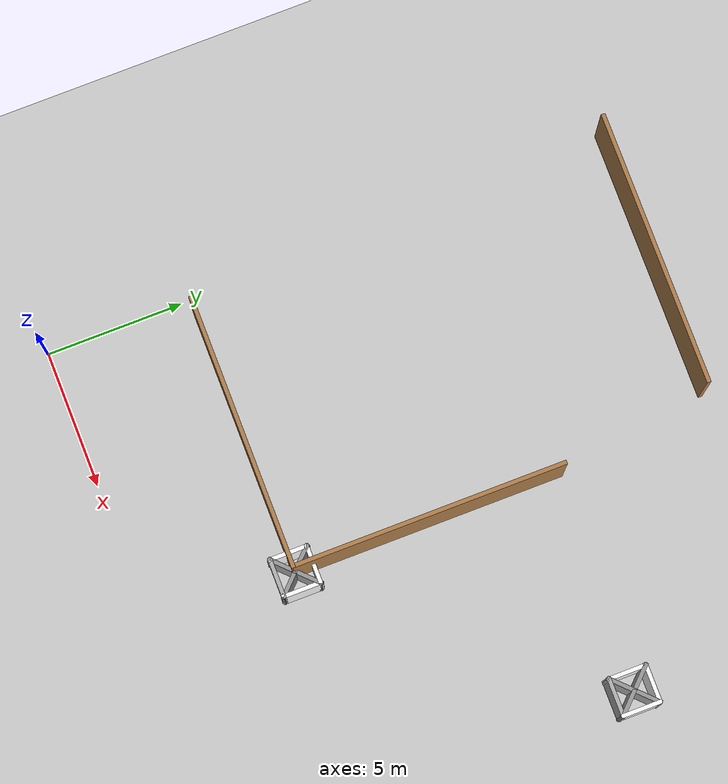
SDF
<sdf version="1.7">
 <world name="default">
  <model name="ground_plane">
   <static>1</static>
   <link name="link">
    <collision name="collision">
     <geometry><plane><normal>0 0 1</normal><size>100 100</size></plane></geometry>
     <surface>
      <contact><collide_bitmask>65535</collide_bitmask></contact>
      <friction><ode><mu>100</mu><mu2>50</mu2></ode></friction>
     </surface>
    </collision>
    <visual name="visual">
     <cast_shadows>0</cast_shadows>
     <geometry><plane><normal>0 0 1</normal><size>100 100</size></plane></geometry>
     <material>
      <script><uri>file://media/materials/scripts/gazebo.material</uri><name>Gazebo/Grey</name></script>
     </material>
    </visual>
   </link>
  </model>
  <model name="Untitled_clone_clone_0_clone_clone_1_clone">
   <link name="Wall_0">
    <pose>-0.8775 -4.2975 0 0 -0 0</pose>
    <inertial>
     <mass>1</mass>
     <inertia><ixx>1</ixx><ixy>0</ixy><ixz>0</ixz><iyy>1</iyy><iyz>0</iyz><izz>1</izz></inertia>
    </inertial>
    <visual name="Wall_0_Visual">
     <pose>0 0 1.9 0 -0 0</pose>
     <geometry><box><size>10 0.15 3.8</size></box></geometry>
     <material>
      <script><uri>file://media/materials/scripts/gazebo.material</uri><name>Gazebo/Wood</name></script>
      <ambient>1 1 1 1</ambient>
      <shader type="pixel"><normal_map>__default__</normal_map></shader>
      <diffuse>1 1 1 1</diffuse>
      <specular>0.2 0.2 0.2 1</specular>
      <emissive>0 0 0 1</emissive>
     </material>
     <meta><layer>0</layer></meta>
    </visual>
    <collision name="Wall_0_Collision">
     <pose>0 0 1.9 0 -0 0</pose>
     <geometry><box><size>10 0.15 3.8</size></box></geometry>
     <surface>
      <friction>
       <ode><mu>1</mu><mu2>1</mu2><fdir1>0 0 0</fdir1><slip1>0</slip1><slip2>0</slip2></ode>
       <torsional>
        <coefficient>1</coefficient>
        <patch_radius>0</patch_radius>
        <surface_radius>0</surface_radius>
        <use_patch_radius>1</use_patch_radius>
        <ode><slip>0</slip></ode>
       </torsional>
      </friction>
      <bounce><restitution_coefficient>0</restitution_coefficient><threshold>1e+06</threshold></bounce>
      <contact>
       <collide_without_contact>0</collide_without_contact>
       <collide_without_contact_bitmask>1</collide_without_contact_bitmask>
       <collide_bitmask>1</collide_bitmask>
       <ode>
        <soft_cfm>0</soft_cfm>
        <soft_erp>0.2</soft_erp>
        <kp>1e+13</kp>
        <kd>1</kd>
        <max_vel>0.01</max_vel>
        <min_depth>0</min_depth>
       </ode>
       <bullet>
        <split_impulse>1</split_impulse>
        <split_impulse_penetration_threshold>-0.01</split_impulse_penetration_threshold>
        <soft_cfm>0</soft_cfm>
        <soft_erp>0.2</soft_erp>
        <kp>1e+13</kp>
        <kd>1</kd>
       </bullet>
      </contact>
     </surface>
    </collision>
   </link>
   <static>1</static>
   <pose>6.34801 9.65586 0 0 -0 0</pose>
  </model>
  <model name="Untitled_clone_clone_0_clone_2_clone">
   <link name="Wall_0">
    <pose>-0.8775 -4.2975 0 0 -0 0</pose>
    <inertial>
     <mass>1</mass>
     <inertia><ixx>1</ixx><ixy>0</ixy><ixz>0</ixz><iyy>1</iyy><iyz>0</iyz><izz>1</izz></inertia>
    </inertial>
    <visual name="Wall_0_Visual">
     <pose>0 0 1.9 0 -0 0</pose>
     <geometry><box><size>10 0.15 3.8</size></box></geometry>
     <material>
      <script><uri>file://media/materials/scripts/gazebo.material</uri><name>Gazebo/Wood</name></script>
      <ambient>1 1 1 1</ambient>
      <shader type="pixel"><normal_map>__default__</normal_map></shader>
      <diffuse>1 1 1 1</diffuse>
      <specular>0.2 0.2 0.2 1</specular>
      <emissive>0 0 0 1</emissive>
     </material>
     <meta><layer>0</layer></meta>
    </visual>
    <collision name="Wall_0_Collision">
     <pose>0 0 1.9 0 -0 0</pose>
     <geometry><box><size>10 0.15 3.8</size></box></geometry>
     <surface>
      <friction>
       <ode><mu>1</mu><mu2>1</mu2><fdir1>0 0 0</fdir1><slip1>0</slip1><slip2>0</slip2></ode>
       <torsional>
        <coefficient>1</coefficient>
        <patch_radius>0</patch_radius>
        <surface_radius>0</surface_radius>
        <use_patch_radius>1</use_patch_radius>
        <ode><slip>0</slip></ode>
       </torsional>
      </friction>
      <bounce><restitution_coefficient>0</restitution_coefficient><threshold>1e+06</threshold></bounce>
      <contact>
       <collide_without_contact>0</collide_without_contact>
       <collide_without_contact_bitmask>1</collide_without_contact_bitmask>
       <collide_bitmask>1</collide_bitmask>
       <ode>
        <soft_cfm>0</soft_cfm>
        <soft_erp>0.2</soft_erp>
        <kp>1e+13</kp>
        <kd>1</kd>
        <max_vel>0.01</max_vel>
        <min_depth>0</min_depth>
       </ode>
       <bullet>
        <split_impulse>1</split_impulse>
        <split_impulse_penetration_threshold>-0.01</split_impulse_penetration_threshold>
        <soft_cfm>0</soft_cfm>
        <soft_erp>0.2</soft_erp>
        <kp>1e+13</kp>
        <kd>1</kd>
       </bullet>
      </contact>
     </surface>
    </collision>
   </link>
   <static>1</static>
   <pose>6.1062 11.213 0 0 -0 1.5708</pose>
  </model>
  <model name="Untitled_clone_clone_2">
   <link name="Wall_0">
    <pose>-0.8775 -4.2975 0 0 -0 0</pose>
    <inertial>
     <mass>1</mass>
     <inertia><ixx>1</ixx><ixy>0</ixy><ixz>0</ixz><iyy>1</iyy><iyz>0</iyz><izz>1</izz></inertia>
    </inertial>
    <visual name="Wall_0_Visual">
     <pose>0 0 1.9 0 -0 0</pose>
     <geometry><box><size>10 0.15 3.8</size></box></geometry>
     <material>
      <script><uri>file://media/materials/scripts/gazebo.material</uri><name>Gazebo/Wood</name></script>
      <ambient>1 1 1 1</ambient>
      <shader type="pixel"><normal_map>__default__</normal_map></shader>
      <diffuse>1 1 1 1</diffuse>
      <specular>0.2 0.2 0.2 1</specular>
      <emissive>0 0 0 1</emissive>
     </material>
     <meta><layer>0</layer></meta>
    </visual>
    <collision name="Wall_0_Collision">
     <pose>0 0 1.9 0 -0 0</pose>
     <geometry><box><size>10 0.15 3.8</size></box></geometry>
     <surface>
      <friction>
       <ode><mu>1</mu><mu2>1</mu2><fdir1>0 0 0</fdir1><slip1>0</slip1><slip2>0</slip2></ode>
       <torsional>
        <coefficient>1</coefficient>
        <patch_radius>0</patch_radius>
        <surface_radius>0</surface_radius>
        <use_patch_radius>1</use_patch_radius>
        <ode><slip>0</slip></ode>
       </torsional>
      </friction>
      <bounce><restitution_coefficient>0</restitution_coefficient><threshold>1e+06</threshold></bounce>
      <contact>
       <collide_without_contact>0</collide_without_contact>
       <collide_without_contact_bitmask>1</collide_without_contact_bitmask>
       <collide_bitmask>1</collide_bitmask>
       <ode>
        <soft_cfm>0</soft_cfm>
        <soft_erp>0.2</soft_erp>
        <kp>1e+13</kp>
        <kd>1</kd>
        <max_vel>0.01</max_vel>
        <min_depth>0</min_depth>
       </ode>
       <bullet>
        <split_impulse>1</split_impulse>
        <split_impulse_penetration_threshold>-0.01</split_impulse_penetration_threshold>
        <soft_cfm>0</soft_cfm>
        <soft_erp>0.2</soft_erp>
        <kp>1e+13</kp>
        <kd>1</kd>
       </bullet>
      </contact>
     </surface>
    </collision>
   </link>
   <static>1</static>
   <pose>5.4678 25.173 0 0 -0 0</pose>
  </model>
  <model name="Untitled_1_clone_3">
   <link name="Wall_10">
    <pose>4.92197 -3.43197 0 0 -0 1.5708</pose>
    <inertial>
     <mass>1</mass>
     <inertia><ixx>1</ixx><ixy>0</ixy><ixz>0</ixz><iyy>1</iyy><iyz>0</iyz><izz>1</izz></inertia>
    </inertial>
    <visual name="Wall_10_Visual">
     <pose>0 0 1.25 0 -0 0</pose>
     <geometry><box><size>1.5 0.15 2.5</size></box></geometry>
     <material>
      <script><uri>file://media/materials/scripts/gazebo.material</uri><name>Gazebo/CoM</name></script>
      <ambient>1 1 1 1</ambient>
      <shader type="pixel"><normal_map>__default__</normal_map></shader>
      <diffuse>1 1 1 1</diffuse>
      <specular>0 0 0 1</specular>
      <emissive>0 0 0 1</emissive>
     </material>
     <meta><layer>0</layer></meta>
    </visual>
    <collision name="Wall_10_Collision">
     <pose>0 0 1.25 0 -0 0</pose>
     <geometry><box><size>1.5 0.15 2.5</size></box></geometry>
     <surface>
      <friction>
       <ode><mu>1</mu><mu2>1</mu2><fdir1>0 0 0</fdir1><slip1>0</slip1><slip2>0</slip2></ode>
       <torsional>
        <coefficient>1</coefficient>
        <patch_radius>0</patch_radius>
        <surface_radius>0</surface_radius>
        <use_patch_radius>1</use_patch_radius>
        <ode><slip>0</slip></ode>
       </torsional>
      </friction>
      <bounce><restitution_coefficient>0</restitution_coefficient><threshold>1e+06</threshold></bounce>
      <contact>
       <collide_without_contact>0</collide_without_contact>
       <collide_without_contact_bitmask>1</collide_without_contact_bitmask>
       <collide_bitmask>1</collide_bitmask>
       <ode>
        <soft_cfm>0</soft_cfm>
        <soft_erp>0.2</soft_erp>
        <kp>1e+13</kp>
        <kd>1</kd>
        <max_vel>0.01</max_vel>
        <min_depth>0</min_depth>
       </ode>
       <bullet>
        <split_impulse>1</split_impulse>
        <split_impulse_penetration_threshold>-0.01</split_impulse_penetration_threshold>
        <soft_cfm>0</soft_cfm>
        <soft_erp>0.2</soft_erp>
        <kp>1e+13</kp>
        <kd>1</kd>
       </bullet>
      </contact>
     </surface>
    </collision>
   </link>
   <link name="Wall_11">
    <pose>5.59697 -3.43197 0 0 0 -0.785398</pose>
    <visual name="Wall_11_Visual">
     <pose>0 0 1.25 0 -0 0</pose>
     <geometry><box><size>2.05919 0.15 2.5</size></box></geometry>
     <material>
      <script><uri>file://media/materials/scripts/gazebo.material</uri><name>Gazebo/Grey</name></script>
      <ambient>1 1 1 1</ambient>
      <shader type="pixel"/>
     </material>
     <meta><layer>0</layer></meta>
    </visual>
    <collision name="Wall_11_Collision">
     <pose>0 0 1.25 0 -0 0</pose>
     <geometry><box><size>2.05919 0.15 2.5</size></box></geometry>
     <surface>
      <friction>
       <ode><mu>1</mu><mu2>1</mu2><fdir1>0 0 0</fdir1><slip1>0</slip1><slip2>0</slip2></ode>
       <torsional>
        <coefficient>1</coefficient>
        <patch_radius>0</patch_radius>
        <surface_radius>0</surface_radius>
        <use_patch_radius>1</use_patch_radius>
        <ode><slip>0</slip></ode>
       </torsional>
      </friction>
      <bounce><restitution_coefficient>0</restitution_coefficient><threshold>1e+06</threshold></bounce>
      <contact>
       <collide_without_contact>0</collide_without_contact>
       <collide_without_contact_bitmask>1</collide_without_contact_bitmask>
       <collide_bitmask>1</collide_bitmask>
       <ode>
        <soft_cfm>0</soft_cfm>
        <soft_erp>0.2</soft_erp>
        <kp>1e+13</kp>
        <kd>1</kd>
        <max_vel>0.01</max_vel>
        <min_depth>0</min_depth>
       </ode>
       <bullet>
        <split_impulse>1</split_impulse>
        <split_impulse_penetration_threshold>-0.01</split_impulse_penetration_threshold>
        <soft_cfm>0</soft_cfm>
        <soft_erp>0.2</soft_erp>
        <kp>1e+13</kp>
        <kd>1</kd>
       </bullet>
      </contact>
     </surface>
    </collision>
   </link>
   <link name="Wall_13">
    <pose>5.59697 -3.43197 0 0 -0 0.785398</pose>
    <visual name="Wall_13_Visual">
     <pose>0 0 1.25 0 -0 0</pose>
     <geometry><box><size>2.05919 0.15 2.5</size></box></geometry>
     <material>
      <script><uri>file://media/materials/scripts/gazebo.material</uri><name>Gazebo/Grey</name></script>
      <ambient>1 1 1 1</ambient>
      <shader type="pixel"/>
     </material>
     <meta><layer>0</layer></meta>
    </visual>
    <collision name="Wall_13_Collision">
     <pose>0 0 1.25 0 -0 0</pose>
     <geometry><box><size>2.05919 0.15 2.5</size></box></geometry>
     <surface>
      <friction>
       <ode><mu>1</mu><mu2>1</mu2><fdir1>0 0 0</fdir1><slip1>0</slip1><slip2>0</slip2></ode>
       <torsional>
        <coefficient>1</coefficient>
        <patch_radius>0</patch_radius>
        <surface_radius>0</surface_radius>
        <use_patch_radius>1</use_patch_radius>
        <ode><slip>0</slip></ode>
       </torsional>
      </friction>
      <bounce><restitution_coefficient>0</restitution_coefficient><threshold>1e+06</threshold></bounce>
      <contact>
       <collide_without_contact>0</collide_without_contact>
       <collide_without_contact_bitmask>1</collide_without_contact_bitmask>
       <collide_bitmask>1</collide_bitmask>
       <ode>
        <soft_cfm>0</soft_cfm>
        <soft_erp>0.2</soft_erp>
        <kp>1e+13</kp>
        <kd>1</kd>
        <max_vel>0.01</max_vel>
        <min_depth>0</min_depth>
       </ode>
       <bullet>
        <split_impulse>1</split_impulse>
        <split_impulse_penetration_threshold>-0.01</split_impulse_penetration_threshold>
        <soft_cfm>0</soft_cfm>
        <soft_erp>0.2</soft_erp>
        <kp>1e+13</kp>
        <kd>1</kd>
       </bullet>
      </contact>
     </surface>
    </collision>
   </link>
   <link name="Wall_7">
    <pose>5.59697 -2.75697 0 0 -0 0</pose>
    <inertial>
     <mass>1</mass>
     <inertia><ixx>1</ixx><ixy>0</ixy><ixz>0</ixz><iyy>1</iyy><iyz>0</iyz><izz>1</izz></inertia>
    </inertial>
    <visual name="Wall_7_Visual">
     <pose>0 0 1.25 0 -0 0</pose>
     <geometry><box><size>1.5 0.15 2.5</size></box></geometry>
     <material>
      <script><uri>file://media/materials/scripts/gazebo.material</uri><name>Gazebo/CoM</name></script>
      <ambient>1 1 1 1</ambient>
      <shader type="pixel"><normal_map>__default__</normal_map></shader>
      <diffuse>1 1 1 1</diffuse>
      <specular>0 0 0 1</specular>
      <emissive>0 0 0 1</emissive>
     </material>
     <meta><layer>0</layer></meta>
    </visual>
    <collision name="Wall_7_Collision">
     <pose>0 0 1.25 0 -0 0</pose>
     <geometry><box><size>1.5 0.15 2.5</size></box></geometry>
     <surface>
      <friction>
       <ode><mu>1</mu><mu2>1</mu2><fdir1>0 0 0</fdir1><slip1>0</slip1><slip2>0</slip2></ode>
       <torsional>
        <coefficient>1</coefficient>
        <patch_radius>0</patch_radius>
        <surface_radius>0</surface_radius>
        <use_patch_radius>1</use_patch_radius>
        <ode><slip>0</slip></ode>
       </torsional>
      </friction>
      <bounce><restitution_coefficient>0</restitution_coefficient><threshold>1e+06</threshold></bounce>
      <contact>
       <collide_without_contact>0</collide_without_contact>
       <collide_without_contact_bitmask>1</collide_without_contact_bitmask>
       <collide_bitmask>1</collide_bitmask>
       <ode>
        <soft_cfm>0</soft_cfm>
        <soft_erp>0.2</soft_erp>
        <kp>1e+13</kp>
        <kd>1</kd>
        <max_vel>0.01</max_vel>
        <min_depth>0</min_depth>
       </ode>
       <bullet>
        <split_impulse>1</split_impulse>
        <split_impulse_penetration_threshold>-0.01</split_impulse_penetration_threshold>
        <soft_cfm>0</soft_cfm>
        <soft_erp>0.2</soft_erp>
        <kp>1e+13</kp>
        <kd>1</kd>
       </bullet>
      </contact>
     </surface>
    </collision>
   </link>
   <link name="Wall_8">
    <pose>6.27197 -3.43197 0 0 0 -1.5708</pose>
    <inertial>
     <mass>1</mass>
     <inertia><ixx>1</ixx><ixy>0</ixy><ixz>0</ixz><iyy>1</iyy><iyz>0</iyz><izz>1</izz></inertia>
    </inertial>
    <visual name="Wall_8_Visual">
     <pose>0 0 1.25 0 -0 0</pose>
     <geometry><box><size>1.5 0.15 2.5</size></box></geometry>
     <material>
      <script><uri>file://media/materials/scripts/gazebo.material</uri><name>Gazebo/CoM</name></script>
      <ambient>1 1 1 1</ambient>
      <shader type="pixel"><normal_map>__default__</normal_map></shader>
      <diffuse>1 1 1 1</diffuse>
      <specular>0 0 0 1</specular>
      <emissive>0 0 0 1</emissive>
     </material>
     <meta><layer>0</layer></meta>
    </visual>
    <collision name="Wall_8_Collision">
     <pose>0 0 1.25 0 -0 0</pose>
     <geometry><box><size>1.5 0.15 2.5</size></box></geometry>
     <surface>
      <friction>
       <ode><mu>1</mu><mu2>1</mu2><fdir1>0 0 0</fdir1><slip1>0</slip1><slip2>0</slip2></ode>
       <torsional>
        <coefficient>1</coefficient>
        <patch_radius>0</patch_radius>
        <surface_radius>0</surface_radius>
        <use_patch_radius>1</use_patch_radius>
        <ode><slip>0</slip></ode>
       </torsional>
      </friction>
      <bounce><restitution_coefficient>0</restitution_coefficient><threshold>1e+06</threshold></bounce>
      <contact>
       <collide_without_contact>0</collide_without_contact>
       <collide_without_contact_bitmask>1</collide_without_contact_bitmask>
       <collide_bitmask>1</collide_bitmask>
       <ode>
        <soft_cfm>0</soft_cfm>
        <soft_erp>0.2</soft_erp>
        <kp>1e+13</kp>
        <kd>1</kd>
        <max_vel>0.01</max_vel>
        <min_depth>0</min_depth>
       </ode>
       <bullet>
        <split_impulse>1</split_impulse>
        <split_impulse_penetration_threshold>-0.01</split_impulse_penetration_threshold>
        <soft_cfm>0</soft_cfm>
        <soft_erp>0.2</soft_erp>
        <kp>1e+13</kp>
        <kd>1</kd>
       </bullet>
      </contact>
     </surface>
    </collision>
   </link>
   <link name="Wall_9">
    <pose>5.59697 -4.10697 0 0 -0 3.14159</pose>
    <inertial>
     <mass>1</mass>
     <inertia><ixx>1</ixx><ixy>0</ixy><ixz>0</ixz><iyy>1</iyy><iyz>0</iyz><izz>1</izz></inertia>
    </inertial>
    <visual name="Wall_9_Visual">
     <pose>0 0 1.25 0 -0 0</pose>
     <geometry><box><size>1.5 0.15 2.5</size></box></geometry>
     <material>
      <script><uri>file://media/materials/scripts/gazebo.material</uri><name>Gazebo/CoM</name></script>
      <ambient>1 1 1 1</ambient>
      <shader type="pixel"><normal_map>__default__</normal_map></shader>
      <diffuse>0.7 0.7 0.7 1</diffuse>
      <specular>0.01 0.01 0.01 1</specular>
      <emissive>0 0 0 1</emissive>
     </material>
     <meta><layer>0</layer></meta>
    </visual>
    <collision name="Wall_9_Collision">
     <pose>0 0 1.25 0 -0 0</pose>
     <geometry><box><size>1.5 0.15 2.5</size></box></geometry>
     <surface>
      <friction>
       <ode><mu>1</mu><mu2>1</mu2><fdir1>0 0 0</fdir1><slip1>0</slip1><slip2>0</slip2></ode>
       <torsional>
        <coefficient>1</coefficient>
        <patch_radius>0</patch_radius>
        <surface_radius>0</surface_radius>
        <use_patch_radius>1</use_patch_radius>
        <ode><slip>0</slip></ode>
       </torsional>
      </friction>
      <bounce><restitution_coefficient>0</restitution_coefficient><threshold>1e+06</threshold></bounce>
      <contact>
       <collide_without_contact>0</collide_without_contact>
       <collide_without_contact_bitmask>1</collide_without_contact_bitmask>
       <collide_bitmask>1</collide_bitmask>
       <ode>
        <soft_cfm>0</soft_cfm>
        <soft_erp>0.2</soft_erp>
        <kp>1e+13</kp>
        <kd>1</kd>
        <max_vel>0.01</max_vel>
        <min_depth>0</min_depth>
       </ode>
       <bullet>
        <split_impulse>1</split_impulse>
        <split_impulse_penetration_threshold>-0.01</split_impulse_penetration_threshold>
        <soft_cfm>0</soft_cfm>
        <soft_erp>0.2</soft_erp>
        <kp>1e+13</kp>
        <kd>1</kd>
       </bullet>
      </contact>
     </surface>
    </collision>
   </link>
   <static>1</static>
   <pose>12.8356 18.2019 0 0 -0 0</pose>
  </model>
  <model name="Untitled_1_clone_0_clone">
   <link name="Wall_10">
    <pose>4.92197 -3.43197 0 0 -0 1.5708</pose>
    <inertial>
     <mass>1</mass>
     <inertia><ixx>1</ixx><ixy>0</ixy><ixz>0</ixz><iyy>1</iyy><iyz>0</iyz><izz>1</izz></inertia>
    </inertial>
    <visual name="Wall_10_Visual">
     <pose>0 0 1.25 0 -0 0</pose>
     <geometry><box><size>1.5 0.15 2.5</size></box></geometry>
     <material>
      <script><uri>file://media/materials/scripts/gazebo.material</uri><name>Gazebo/CoM</name></script>
      <ambient>1 1 1 1</ambient>
      <shader type="pixel"><normal_map>__default__</normal_map></shader>
      <diffuse>1 1 1 1</diffuse>
      <specular>0 0 0 1</specular>
      <emissive>0 0 0 1</emissive>
     </material>
     <meta><layer>0</layer></meta>
    </visual>
    <collision name="Wall_10_Collision">
     <pose>0 0 1.25 0 -0 0</pose>
     <geometry><box><size>1.5 0.15 2.5</size></box></geometry>
     <surface>
      <friction>
       <ode><mu>1</mu><mu2>1</mu2><fdir1>0 0 0</fdir1><slip1>0</slip1><slip2>0</slip2></ode>
       <torsional>
        <coefficient>1</coefficient>
        <patch_radius>0</patch_radius>
        <surface_radius>0</surface_radius>
        <use_patch_radius>1</use_patch_radius>
        <ode><slip>0</slip></ode>
       </torsional>
      </friction>
      <bounce><restitution_coefficient>0</restitution_coefficient><threshold>1e+06</threshold></bounce>
      <contact>
       <collide_without_contact>0</collide_without_contact>
       <collide_without_contact_bitmask>1</collide_without_contact_bitmask>
       <collide_bitmask>1</collide_bitmask>
       <ode>
        <soft_cfm>0</soft_cfm>
        <soft_erp>0.2</soft_erp>
        <kp>1e+13</kp>
        <kd>1</kd>
        <max_vel>0.01</max_vel>
        <min_depth>0</min_depth>
       </ode>
       <bullet>
        <split_impulse>1</split_impulse>
        <split_impulse_penetration_threshold>-0.01</split_impulse_penetration_threshold>
        <soft_cfm>0</soft_cfm>
        <soft_erp>0.2</soft_erp>
        <kp>1e+13</kp>
        <kd>1</kd>
       </bullet>
      </contact>
     </surface>
    </collision>
   </link>
   <link name="Wall_11">
    <pose>5.59697 -3.43197 0 0 0 -0.785398</pose>
    <visual name="Wall_11_Visual">
     <pose>0 0 1.25 0 -0 0</pose>
     <geometry><box><size>2.05919 0.15 2.5</size></box></geometry>
     <material>
      <script><uri>file://media/materials/scripts/gazebo.material</uri><name>Gazebo/Grey</name></script>
      <ambient>1 1 1 1</ambient>
      <shader type="pixel"/>
     </material>
     <meta><layer>0</layer></meta>
    </visual>
    <collision name="Wall_11_Collision">
     <pose>0 0 1.25 0 -0 0</pose>
     <geometry><box><size>2.05919 0.15 2.5</size></box></geometry>
     <surface>
      <friction>
       <ode><mu>1</mu><mu2>1</mu2><fdir1>0 0 0</fdir1><slip1>0</slip1><slip2>0</slip2></ode>
       <torsional>
        <coefficient>1</coefficient>
        <patch_radius>0</patch_radius>
        <surface_radius>0</surface_radius>
        <use_patch_radius>1</use_patch_radius>
        <ode><slip>0</slip></ode>
       </torsional>
      </friction>
      <bounce><restitution_coefficient>0</restitution_coefficient><threshold>1e+06</threshold></bounce>
      <contact>
       <collide_without_contact>0</collide_without_contact>
       <collide_without_contact_bitmask>1</collide_without_contact_bitmask>
       <collide_bitmask>1</collide_bitmask>
       <ode>
        <soft_cfm>0</soft_cfm>
        <soft_erp>0.2</soft_erp>
        <kp>1e+13</kp>
        <kd>1</kd>
        <max_vel>0.01</max_vel>
        <min_depth>0</min_depth>
       </ode>
       <bullet>
        <split_impulse>1</split_impulse>
        <split_impulse_penetration_threshold>-0.01</split_impulse_penetration_threshold>
        <soft_cfm>0</soft_cfm>
        <soft_erp>0.2</soft_erp>
        <kp>1e+13</kp>
        <kd>1</kd>
       </bullet>
      </contact>
     </surface>
    </collision>
   </link>
   <link name="Wall_13">
    <pose>5.59697 -3.43197 0 0 -0 0.785398</pose>
    <visual name="Wall_13_Visual">
     <pose>0 0 1.25 0 -0 0</pose>
     <geometry><box><size>2.05919 0.15 2.5</size></box></geometry>
     <material>
      <script><uri>file://media/materials/scripts/gazebo.material</uri><name>Gazebo/Grey</name></script>
      <ambient>1 1 1 1</ambient>
      <shader type="pixel"/>
     </material>
     <meta><layer>0</layer></meta>
    </visual>
    <collision name="Wall_13_Collision">
     <pose>0 0 1.25 0 -0 0</pose>
     <geometry><box><size>2.05919 0.15 2.5</size></box></geometry>
     <surface>
      <friction>
       <ode><mu>1</mu><mu2>1</mu2><fdir1>0 0 0</fdir1><slip1>0</slip1><slip2>0</slip2></ode>
       <torsional>
        <coefficient>1</coefficient>
        <patch_radius>0</patch_radius>
        <surface_radius>0</surface_radius>
        <use_patch_radius>1</use_patch_radius>
        <ode><slip>0</slip></ode>
       </torsional>
      </friction>
      <bounce><restitution_coefficient>0</restitution_coefficient><threshold>1e+06</threshold></bounce>
      <contact>
       <collide_without_contact>0</collide_without_contact>
       <collide_without_contact_bitmask>1</collide_without_contact_bitmask>
       <collide_bitmask>1</collide_bitmask>
       <ode>
        <soft_cfm>0</soft_cfm>
        <soft_erp>0.2</soft_erp>
        <kp>1e+13</kp>
        <kd>1</kd>
        <max_vel>0.01</max_vel>
        <min_depth>0</min_depth>
       </ode>
       <bullet>
        <split_impulse>1</split_impulse>
        <split_impulse_penetration_threshold>-0.01</split_impulse_penetration_threshold>
        <soft_cfm>0</soft_cfm>
        <soft_erp>0.2</soft_erp>
        <kp>1e+13</kp>
        <kd>1</kd>
       </bullet>
      </contact>
     </surface>
    </collision>
   </link>
   <link name="Wall_7">
    <pose>5.59697 -2.75697 0 0 -0 0</pose>
    <inertial>
     <mass>1</mass>
     <inertia><ixx>1</ixx><ixy>0</ixy><ixz>0</ixz><iyy>1</iyy><iyz>0</iyz><izz>1</izz></inertia>
    </inertial>
    <visual name="Wall_7_Visual">
     <pose>0 0 1.25 0 -0 0</pose>
     <geometry><box><size>1.5 0.15 2.5</size></box></geometry>
     <material>
      <script><uri>file://media/materials/scripts/gazebo.material</uri><name>Gazebo/CoM</name></script>
      <ambient>1 1 1 1</ambient>
      <shader type="pixel"><normal_map>__default__</normal_map></shader>
      <diffuse>1 1 1 1</diffuse>
      <specular>0 0 0 1</specular>
      <emissive>0 0 0 1</emissive>
     </material>
     <meta><layer>0</layer></meta>
    </visual>
    <collision name="Wall_7_Collision">
     <pose>0 0 1.25 0 -0 0</pose>
     <geometry><box><size>1.5 0.15 2.5</size></box></geometry>
     <surface>
      <friction>
       <ode><mu>1</mu><mu2>1</mu2><fdir1>0 0 0</fdir1><slip1>0</slip1><slip2>0</slip2></ode>
       <torsional>
        <coefficient>1</coefficient>
        <patch_radius>0</patch_radius>
        <surface_radius>0</surface_radius>
        <use_patch_radius>1</use_patch_radius>
        <ode><slip>0</slip></ode>
       </torsional>
      </friction>
      <bounce><restitution_coefficient>0</restitution_coefficient><threshold>1e+06</threshold></bounce>
      <contact>
       <collide_without_contact>0</collide_without_contact>
       <collide_without_contact_bitmask>1</collide_without_contact_bitmask>
       <collide_bitmask>1</collide_bitmask>
       <ode>
        <soft_cfm>0</soft_cfm>
        <soft_erp>0.2</soft_erp>
        <kp>1e+13</kp>
        <kd>1</kd>
        <max_vel>0.01</max_vel>
        <min_depth>0</min_depth>
       </ode>
       <bullet>
        <split_impulse>1</split_impulse>
        <split_impulse_penetration_threshold>-0.01</split_impulse_penetration_threshold>
        <soft_cfm>0</soft_cfm>
        <soft_erp>0.2</soft_erp>
        <kp>1e+13</kp>
        <kd>1</kd>
       </bullet>
      </contact>
     </surface>
    </collision>
   </link>
   <link name="Wall_8">
    <pose>6.27197 -3.43197 0 0 0 -1.5708</pose>
    <inertial>
     <mass>1</mass>
     <inertia><ixx>1</ixx><ixy>0</ixy><ixz>0</ixz><iyy>1</iyy><iyz>0</iyz><izz>1</izz></inertia>
    </inertial>
    <visual name="Wall_8_Visual">
     <pose>0 0 1.25 0 -0 0</pose>
     <geometry><box><size>1.5 0.15 2.5</size></box></geometry>
     <material>
      <script><uri>file://media/materials/scripts/gazebo.material</uri><name>Gazebo/CoM</name></script>
      <ambient>1 1 1 1</ambient>
      <shader type="pixel"><normal_map>__default__</normal_map></shader>
      <diffuse>1 1 1 1</diffuse>
      <specular>0 0 0 1</specular>
      <emissive>0 0 0 1</emissive>
     </material>
     <meta><layer>0</layer></meta>
    </visual>
    <collision name="Wall_8_Collision">
     <pose>0 0 1.25 0 -0 0</pose>
     <geometry><box><size>1.5 0.15 2.5</size></box></geometry>
     <surface>
      <friction>
       <ode><mu>1</mu><mu2>1</mu2><fdir1>0 0 0</fdir1><slip1>0</slip1><slip2>0</slip2></ode>
       <torsional>
        <coefficient>1</coefficient>
        <patch_radius>0</patch_radius>
        <surface_radius>0</surface_radius>
        <use_patch_radius>1</use_patch_radius>
        <ode><slip>0</slip></ode>
       </torsional>
      </friction>
      <bounce><restitution_coefficient>0</restitution_coefficient><threshold>1e+06</threshold></bounce>
      <contact>
       <collide_without_contact>0</collide_without_contact>
       <collide_without_contact_bitmask>1</collide_without_contact_bitmask>
       <collide_bitmask>1</collide_bitmask>
       <ode>
        <soft_cfm>0</soft_cfm>
        <soft_erp>0.2</soft_erp>
        <kp>1e+13</kp>
        <kd>1</kd>
        <max_vel>0.01</max_vel>
        <min_depth>0</min_depth>
       </ode>
       <bullet>
        <split_impulse>1</split_impulse>
        <split_impulse_penetration_threshold>-0.01</split_impulse_penetration_threshold>
        <soft_cfm>0</soft_cfm>
        <soft_erp>0.2</soft_erp>
        <kp>1e+13</kp>
        <kd>1</kd>
       </bullet>
      </contact>
     </surface>
    </collision>
   </link>
   <link name="Wall_9">
    <pose>5.59697 -4.10697 0 0 -0 3.14159</pose>
    <inertial>
     <mass>1</mass>
     <inertia><ixx>1</ixx><ixy>0</ixy><ixz>0</ixz><iyy>1</iyy><iyz>0</iyz><izz>1</izz></inertia>
    </inertial>
    <visual name="Wall_9_Visual">
     <pose>0 0 1.25 0 -0 0</pose>
     <geometry><box><size>1.5 0.15 2.5</size></box></geometry>
     <material>
      <script><uri>file://media/materials/scripts/gazebo.material</uri><name>Gazebo/CoM</name></script>
      <ambient>1 1 1 1</ambient>
      <shader type="pixel"><normal_map>__default__</normal_map></shader>
      <diffuse>0.7 0.7 0.7 1</diffuse>
      <specular>0.01 0.01 0.01 1</specular>
      <emissive>0 0 0 1</emissive>
     </material>
     <meta><layer>0</layer></meta>
    </visual>
    <collision name="Wall_9_Collision">
     <pose>0 0 1.25 0 -0 0</pose>
     <geometry><box><size>1.5 0.15 2.5</size></box></geometry>
     <surface>
      <friction>
       <ode><mu>1</mu><mu2>1</mu2><fdir1>0 0 0</fdir1><slip1>0</slip1><slip2>0</slip2></ode>
       <torsional>
        <coefficient>1</coefficient>
        <patch_radius>0</patch_radius>
        <surface_radius>0</surface_radius>
        <use_patch_radius>1</use_patch_radius>
        <ode><slip>0</slip></ode>
       </torsional>
      </friction>
      <bounce><restitution_coefficient>0</restitution_coefficient><threshold>1e+06</threshold></bounce>
      <contact>
       <collide_without_contact>0</collide_without_contact>
       <collide_without_contact_bitmask>1</collide_without_contact_bitmask>
       <collide_bitmask>1</collide_bitmask>
       <ode>
        <soft_cfm>0</soft_cfm>
        <soft_erp>0.2</soft_erp>
        <kp>1e+13</kp>
        <kd>1</kd>
        <max_vel>0.01</max_vel>
        <min_depth>0</min_depth>
       </ode>
       <bullet>
        <split_impulse>1</split_impulse>
        <split_impulse_penetration_threshold>-0.01</split_impulse_penetration_threshold>
        <soft_cfm>0</soft_cfm>
        <soft_erp>0.2</soft_erp>
        <kp>1e+13</kp>
        <kd>1</kd>
       </bullet>
      </contact>
     </surface>
    </collision>
   </link>
   <static>1</static>
   <pose>4.88398 8.81674 0 0 -0 0</pose>
  </model>
 </world>
</sdf>
